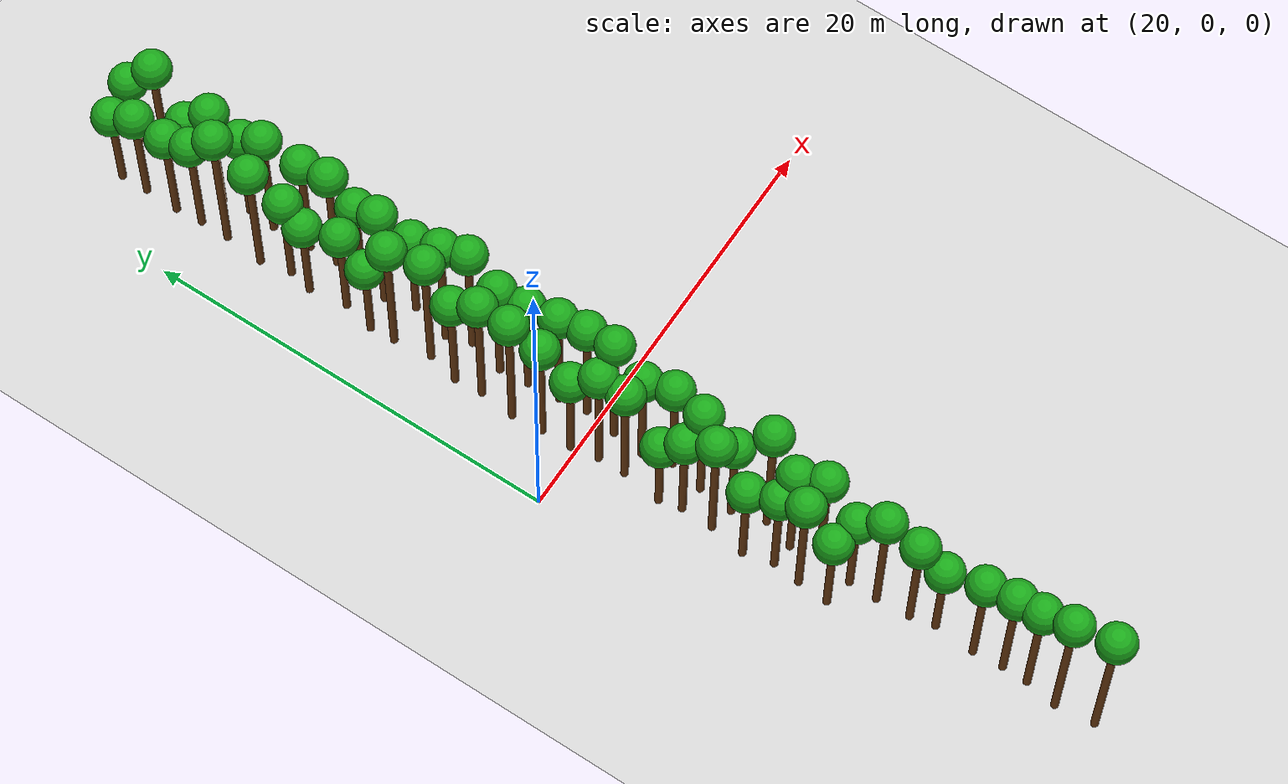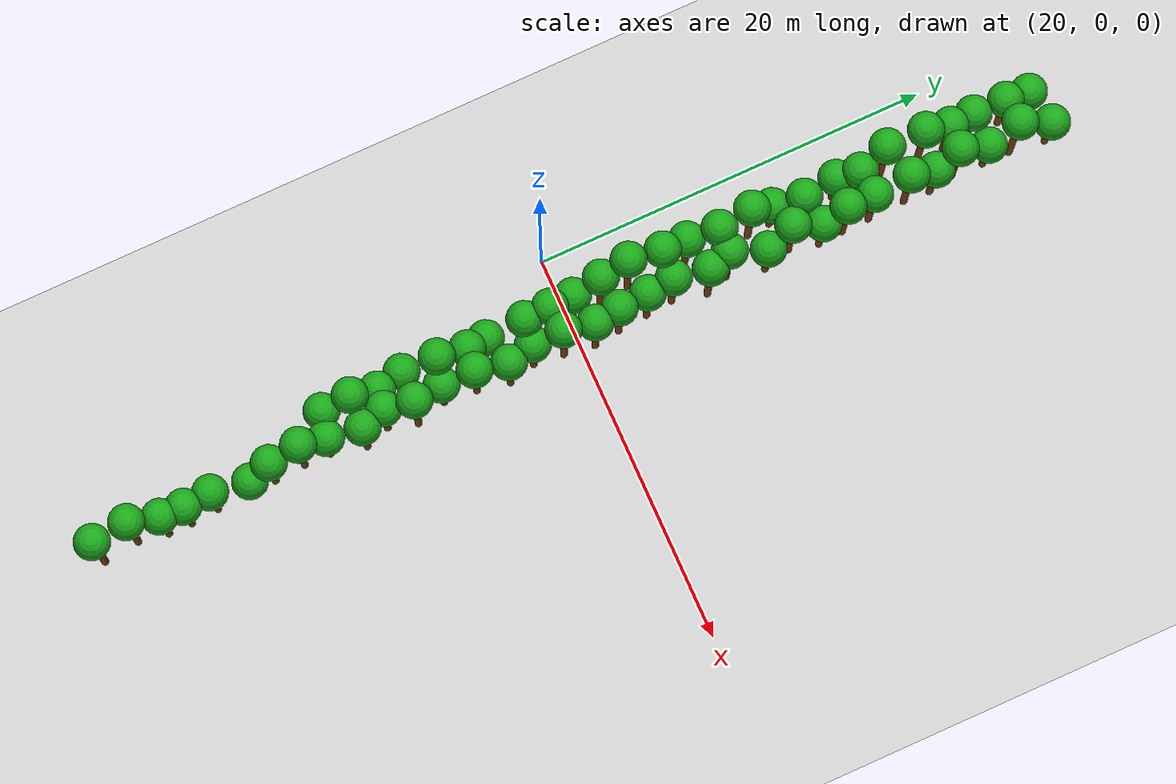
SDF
<sdf version="1.6">
 <world name="forest_world">
  <include><uri>model://sun</uri></include>
  <include><uri>model://ground_plane</uri></include>
  <model name="tree_1083">
   <static>true</static>
   <link name="trunk">
    <collision name="collision">
     <pose>23.01 -12.81 2.91 0 0 0</pose>
     <geometry><cylinder><radius>0.18</radius><length>5.82</length></cylinder></geometry>
    </collision>
    <visual name="trunk_visual">
     <pose>23.01 -12.81 2.91 0 0 0</pose>
     <geometry><cylinder><radius>0.18</radius><length>5.82</length></cylinder></geometry>
     <material><ambient>0.35 0.20 0.05 1</ambient><diffuse>0.45 0.25 0.08 1</diffuse></material>
    </visual>
    <visual name="leaf_visual">
     <pose>23.01 -12.81 6.27 0 0 0</pose>
     <geometry><sphere><radius>0.9</radius></sphere></geometry>
     <material><ambient>0.05 0.45 0.05 1</ambient><diffuse>0.10 0.65 0.10 1</diffuse></material>
    </visual>
   </link>
  </model>
  <model name="tree_1084">
   <static>true</static>
   <link name="trunk">
    <collision name="collision">
     <pose>23.10 -11.32 3.79 0 0 0</pose>
     <geometry><cylinder><radius>0.18</radius><length>7.59</length></cylinder></geometry>
    </collision>
    <visual name="trunk_visual">
     <pose>23.10 -11.32 3.79 0 0 0</pose>
     <geometry><cylinder><radius>0.18</radius><length>7.59</length></cylinder></geometry>
     <material><ambient>0.35 0.20 0.05 1</ambient><diffuse>0.45 0.25 0.08 1</diffuse></material>
    </visual>
    <visual name="leaf_visual">
     <pose>23.10 -11.32 8.04 0 0 0</pose>
     <geometry><sphere><radius>0.9</radius></sphere></geometry>
     <material><ambient>0.05 0.45 0.05 1</ambient><diffuse>0.10 0.65 0.10 1</diffuse></material>
    </visual>
   </link>
  </model>
  <model name="tree_1085">
   <static>true</static>
   <link name="trunk">
    <collision name="collision">
     <pose>23.24 -9.99 3.20 0 0 0</pose>
     <geometry><cylinder><radius>0.18</radius><length>6.40</length></cylinder></geometry>
    </collision>
    <visual name="trunk_visual">
     <pose>23.24 -9.99 3.20 0 0 0</pose>
     <geometry><cylinder><radius>0.18</radius><length>6.40</length></cylinder></geometry>
     <material><ambient>0.35 0.20 0.05 1</ambient><diffuse>0.45 0.25 0.08 1</diffuse></material>
    </visual>
    <visual name="leaf_visual">
     <pose>23.24 -9.99 6.85 0 0 0</pose>
     <geometry><sphere><radius>0.9</radius></sphere></geometry>
     <material><ambient>0.05 0.45 0.05 1</ambient><diffuse>0.10 0.65 0.10 1</diffuse></material>
    </visual>
   </link>
  </model>
  <model name="tree_1086">
   <static>true</static>
   <link name="trunk">
    <collision name="collision">
     <pose>22.89 -8.59 3.01 0 0 0</pose>
     <geometry><cylinder><radius>0.18</radius><length>6.03</length></cylinder></geometry>
    </collision>
    <visual name="trunk_visual">
     <pose>22.89 -8.59 3.01 0 0 0</pose>
     <geometry><cylinder><radius>0.18</radius><length>6.03</length></cylinder></geometry>
     <material><ambient>0.35 0.20 0.05 1</ambient><diffuse>0.45 0.25 0.08 1</diffuse></material>
    </visual>
    <visual name="leaf_visual">
     <pose>22.89 -8.59 6.48 0 0 0</pose>
     <geometry><sphere><radius>0.9</radius></sphere></geometry>
     <material><ambient>0.05 0.45 0.05 1</ambient><diffuse>0.10 0.65 0.10 1</diffuse></material>
    </visual>
   </link>
  </model>
  <model name="tree_1087">
   <static>true</static>
   <link name="trunk">
    <collision name="collision">
     <pose>23.17 -6.84 4.02 0 0 0</pose>
     <geometry><cylinder><radius>0.18</radius><length>8.04</length></cylinder></geometry>
    </collision>
    <visual name="trunk_visual">
     <pose>23.17 -6.84 4.02 0 0 0</pose>
     <geometry><cylinder><radius>0.18</radius><length>8.04</length></cylinder></geometry>
     <material><ambient>0.35 0.20 0.05 1</ambient><diffuse>0.45 0.25 0.08 1</diffuse></material>
    </visual>
    <visual name="leaf_visual">
     <pose>23.17 -6.84 8.49 0 0 0</pose>
     <geometry><sphere><radius>0.9</radius></sphere></geometry>
     <material><ambient>0.05 0.45 0.05 1</ambient><diffuse>0.10 0.65 0.10 1</diffuse></material>
    </visual>
   </link>
  </model>
  <model name="tree_1088">
   <static>true</static>
   <link name="trunk">
    <collision name="collision">
     <pose>23.19 -5.30 3.18 0 0 0</pose>
     <geometry><cylinder><radius>0.18</radius><length>6.36</length></cylinder></geometry>
    </collision>
    <visual name="trunk_visual">
     <pose>23.19 -5.30 3.18 0 0 0</pose>
     <geometry><cylinder><radius>0.18</radius><length>6.36</length></cylinder></geometry>
     <material><ambient>0.35 0.20 0.05 1</ambient><diffuse>0.45 0.25 0.08 1</diffuse></material>
    </visual>
    <visual name="leaf_visual">
     <pose>23.19 -5.30 6.81 0 0 0</pose>
     <geometry><sphere><radius>0.9</radius></sphere></geometry>
     <material><ambient>0.05 0.45 0.05 1</ambient><diffuse>0.10 0.65 0.10 1</diffuse></material>
    </visual>
   </link>
  </model>
  <model name="tree_1089">
   <static>true</static>
   <link name="trunk">
    <collision name="collision">
     <pose>22.95 -4.24 2.55 0 0 0</pose>
     <geometry><cylinder><radius>0.18</radius><length>5.11</length></cylinder></geometry>
    </collision>
    <visual name="trunk_visual">
     <pose>22.95 -4.24 2.55 0 0 0</pose>
     <geometry><cylinder><radius>0.18</radius><length>5.11</length></cylinder></geometry>
     <material><ambient>0.35 0.20 0.05 1</ambient><diffuse>0.45 0.25 0.08 1</diffuse></material>
    </visual>
    <visual name="leaf_visual">
     <pose>22.95 -4.24 5.56 0 0 0</pose>
     <geometry><sphere><radius>0.9</radius></sphere></geometry>
     <material><ambient>0.05 0.45 0.05 1</ambient><diffuse>0.10 0.65 0.10 1</diffuse></material>
    </visual>
   </link>
  </model>
  <model name="tree_1090">
   <static>true</static>
   <link name="trunk">
    <collision name="collision">
     <pose>23.19 -2.31 3.79 0 0 0</pose>
     <geometry><cylinder><radius>0.18</radius><length>7.58</length></cylinder></geometry>
    </collision>
    <visual name="trunk_visual">
     <pose>23.19 -2.31 3.79 0 0 0</pose>
     <geometry><cylinder><radius>0.18</radius><length>7.58</length></cylinder></geometry>
     <material><ambient>0.35 0.20 0.05 1</ambient><diffuse>0.45 0.25 0.08 1</diffuse></material>
    </visual>
    <visual name="leaf_visual">
     <pose>23.19 -2.31 8.03 0 0 0</pose>
     <geometry><sphere><radius>0.9</radius></sphere></geometry>
     <material><ambient>0.05 0.45 0.05 1</ambient><diffuse>0.10 0.65 0.10 1</diffuse></material>
    </visual>
   </link>
  </model>
  <model name="tree_1091">
   <static>true</static>
   <link name="trunk">
    <collision name="collision">
     <pose>23.17 -0.98 3.87 0 0 0</pose>
     <geometry><cylinder><radius>0.18</radius><length>7.74</length></cylinder></geometry>
    </collision>
    <visual name="trunk_visual">
     <pose>23.17 -0.98 3.87 0 0 0</pose>
     <geometry><cylinder><radius>0.18</radius><length>7.74</length></cylinder></geometry>
     <material><ambient>0.35 0.20 0.05 1</ambient><diffuse>0.45 0.25 0.08 1</diffuse></material>
    </visual>
    <visual name="leaf_visual">
     <pose>23.17 -0.98 8.19 0 0 0</pose>
     <geometry><sphere><radius>0.9</radius></sphere></geometry>
     <material><ambient>0.05 0.45 0.05 1</ambient><diffuse>0.10 0.65 0.10 1</diffuse></material>
    </visual>
   </link>
  </model>
  <model name="tree_1092">
   <static>true</static>
   <link name="trunk">
    <collision name="collision">
     <pose>22.94 0.32 3.09 0 0 0</pose>
     <geometry><cylinder><radius>0.18</radius><length>6.18</length></cylinder></geometry>
    </collision>
    <visual name="trunk_visual">
     <pose>22.94 0.32 3.09 0 0 0</pose>
     <geometry><cylinder><radius>0.18</radius><length>6.18</length></cylinder></geometry>
     <material><ambient>0.35 0.20 0.05 1</ambient><diffuse>0.45 0.25 0.08 1</diffuse></material>
    </visual>
    <visual name="leaf_visual">
     <pose>22.94 0.32 6.63 0 0 0</pose>
     <geometry><sphere><radius>0.9</radius></sphere></geometry>
     <material><ambient>0.05 0.45 0.05 1</ambient><diffuse>0.10 0.65 0.10 1</diffuse></material>
    </visual>
   </link>
  </model>
  <model name="tree_1093">
   <static>true</static>
   <link name="trunk">
    <collision name="collision">
     <pose>22.89 1.79 3.87 0 0 0</pose>
     <geometry><cylinder><radius>0.18</radius><length>7.74</length></cylinder></geometry>
    </collision>
    <visual name="trunk_visual">
     <pose>22.89 1.79 3.87 0 0 0</pose>
     <geometry><cylinder><radius>0.18</radius><length>7.74</length></cylinder></geometry>
     <material><ambient>0.35 0.20 0.05 1</ambient><diffuse>0.45 0.25 0.08 1</diffuse></material>
    </visual>
    <visual name="leaf_visual">
     <pose>22.89 1.79 8.19 0 0 0</pose>
     <geometry><sphere><radius>0.9</radius></sphere></geometry>
     <material><ambient>0.05 0.45 0.05 1</ambient><diffuse>0.10 0.65 0.10 1</diffuse></material>
    </visual>
   </link>
  </model>
  <model name="tree_1094">
   <static>true</static>
   <link name="trunk">
    <collision name="collision">
     <pose>22.77 3.28 4.29 0 0 0</pose>
     <geometry><cylinder><radius>0.18</radius><length>8.58</length></cylinder></geometry>
    </collision>
    <visual name="trunk_visual">
     <pose>22.77 3.28 4.29 0 0 0</pose>
     <geometry><cylinder><radius>0.18</radius><length>8.58</length></cylinder></geometry>
     <material><ambient>0.35 0.20 0.05 1</ambient><diffuse>0.45 0.25 0.08 1</diffuse></material>
    </visual>
    <visual name="leaf_visual">
     <pose>22.77 3.28 9.03 0 0 0</pose>
     <geometry><sphere><radius>0.9</radius></sphere></geometry>
     <material><ambient>0.05 0.45 0.05 1</ambient><diffuse>0.10 0.65 0.10 1</diffuse></material>
    </visual>
   </link>
  </model>
  <model name="tree_1095">
   <static>true</static>
   <link name="trunk">
    <collision name="collision">
     <pose>22.93 4.98 4.07 0 0 0</pose>
     <geometry><cylinder><radius>0.18</radius><length>8.13</length></cylinder></geometry>
    </collision>
    <visual name="trunk_visual">
     <pose>22.93 4.98 4.07 0 0 0</pose>
     <geometry><cylinder><radius>0.18</radius><length>8.13</length></cylinder></geometry>
     <material><ambient>0.35 0.20 0.05 1</ambient><diffuse>0.45 0.25 0.08 1</diffuse></material>
    </visual>
    <visual name="leaf_visual">
     <pose>22.93 4.98 8.58 0 0 0</pose>
     <geometry><sphere><radius>0.9</radius></sphere></geometry>
     <material><ambient>0.05 0.45 0.05 1</ambient><diffuse>0.10 0.65 0.10 1</diffuse></material>
    </visual>
   </link>
  </model>
  <model name="tree_1096">
   <static>true</static>
   <link name="trunk">
    <collision name="collision">
     <pose>22.81 6.32 3.45 0 0 0</pose>
     <geometry><cylinder><radius>0.18</radius><length>6.90</length></cylinder></geometry>
    </collision>
    <visual name="trunk_visual">
     <pose>22.81 6.32 3.45 0 0 0</pose>
     <geometry><cylinder><radius>0.18</radius><length>6.90</length></cylinder></geometry>
     <material><ambient>0.35 0.20 0.05 1</ambient><diffuse>0.45 0.25 0.08 1</diffuse></material>
    </visual>
    <visual name="leaf_visual">
     <pose>22.81 6.32 7.35 0 0 0</pose>
     <geometry><sphere><radius>0.9</radius></sphere></geometry>
     <material><ambient>0.05 0.45 0.05 1</ambient><diffuse>0.10 0.65 0.10 1</diffuse></material>
    </visual>
   </link>
  </model>
  <model name="tree_1097">
   <static>true</static>
   <link name="trunk">
    <collision name="collision">
     <pose>23.15 7.83 4.26 0 0 0</pose>
     <geometry><cylinder><radius>0.18</radius><length>8.52</length></cylinder></geometry>
    </collision>
    <visual name="trunk_visual">
     <pose>23.15 7.83 4.26 0 0 0</pose>
     <geometry><cylinder><radius>0.18</radius><length>8.52</length></cylinder></geometry>
     <material><ambient>0.35 0.20 0.05 1</ambient><diffuse>0.45 0.25 0.08 1</diffuse></material>
    </visual>
    <visual name="leaf_visual">
     <pose>23.15 7.83 8.97 0 0 0</pose>
     <geometry><sphere><radius>0.9</radius></sphere></geometry>
     <material><ambient>0.05 0.45 0.05 1</ambient><diffuse>0.10 0.65 0.10 1</diffuse></material>
    </visual>
   </link>
  </model>
  <model name="tree_1098">
   <static>true</static>
   <link name="trunk">
    <collision name="collision">
     <pose>22.91 9.63 4.12 0 0 0</pose>
     <geometry><cylinder><radius>0.18</radius><length>8.24</length></cylinder></geometry>
    </collision>
    <visual name="trunk_visual">
     <pose>22.91 9.63 4.12 0 0 0</pose>
     <geometry><cylinder><radius>0.18</radius><length>8.24</length></cylinder></geometry>
     <material><ambient>0.35 0.20 0.05 1</ambient><diffuse>0.45 0.25 0.08 1</diffuse></material>
    </visual>
    <visual name="leaf_visual">
     <pose>22.91 9.63 8.69 0 0 0</pose>
     <geometry><sphere><radius>0.9</radius></sphere></geometry>
     <material><ambient>0.05 0.45 0.05 1</ambient><diffuse>0.10 0.65 0.10 1</diffuse></material>
    </visual>
   </link>
  </model>
  <model name="tree_1099">
   <static>true</static>
   <link name="trunk">
    <collision name="collision">
     <pose>22.81 10.82 2.67 0 0 0</pose>
     <geometry><cylinder><radius>0.18</radius><length>5.33</length></cylinder></geometry>
    </collision>
    <visual name="trunk_visual">
     <pose>22.81 10.82 2.67 0 0 0</pose>
     <geometry><cylinder><radius>0.18</radius><length>5.33</length></cylinder></geometry>
     <material><ambient>0.35 0.20 0.05 1</ambient><diffuse>0.45 0.25 0.08 1</diffuse></material>
    </visual>
    <visual name="leaf_visual">
     <pose>22.81 10.82 5.78 0 0 0</pose>
     <geometry><sphere><radius>0.9</radius></sphere></geometry>
     <material><ambient>0.05 0.45 0.05 1</ambient><diffuse>0.10 0.65 0.10 1</diffuse></material>
    </visual>
   </link>
  </model>
  <model name="tree_1100">
   <static>true</static>
   <link name="trunk">
    <collision name="collision">
     <pose>23.14 12.33 3.08 0 0 0</pose>
     <geometry><cylinder><radius>0.18</radius><length>6.16</length></cylinder></geometry>
    </collision>
    <visual name="trunk_visual">
     <pose>23.14 12.33 3.08 0 0 0</pose>
     <geometry><cylinder><radius>0.18</radius><length>6.16</length></cylinder></geometry>
     <material><ambient>0.35 0.20 0.05 1</ambient><diffuse>0.45 0.25 0.08 1</diffuse></material>
    </visual>
    <visual name="leaf_visual">
     <pose>23.14 12.33 6.61 0 0 0</pose>
     <geometry><sphere><radius>0.9</radius></sphere></geometry>
     <material><ambient>0.05 0.45 0.05 1</ambient><diffuse>0.10 0.65 0.10 1</diffuse></material>
    </visual>
   </link>
  </model>
  <model name="tree_1101">
   <static>true</static>
   <link name="trunk">
    <collision name="collision">
     <pose>22.86 14.14 2.77 0 0 0</pose>
     <geometry><cylinder><radius>0.18</radius><length>5.55</length></cylinder></geometry>
    </collision>
    <visual name="trunk_visual">
     <pose>22.86 14.14 2.77 0 0 0</pose>
     <geometry><cylinder><radius>0.18</radius><length>5.55</length></cylinder></geometry>
     <material><ambient>0.35 0.20 0.05 1</ambient><diffuse>0.45 0.25 0.08 1</diffuse></material>
    </visual>
    <visual name="leaf_visual">
     <pose>22.86 14.14 6.00 0 0 0</pose>
     <geometry><sphere><radius>0.9</radius></sphere></geometry>
     <material><ambient>0.05 0.45 0.05 1</ambient><diffuse>0.10 0.65 0.10 1</diffuse></material>
    </visual>
   </link>
  </model>
  <model name="tree_1102">
   <static>true</static>
   <link name="trunk">
    <collision name="collision">
     <pose>23.10 15.28 3.07 0 0 0</pose>
     <geometry><cylinder><radius>0.18</radius><length>6.15</length></cylinder></geometry>
    </collision>
    <visual name="trunk_visual">
     <pose>23.10 15.28 3.07 0 0 0</pose>
     <geometry><cylinder><radius>0.18</radius><length>6.15</length></cylinder></geometry>
     <material><ambient>0.35 0.20 0.05 1</ambient><diffuse>0.45 0.25 0.08 1</diffuse></material>
    </visual>
    <visual name="leaf_visual">
     <pose>23.10 15.28 6.60 0 0 0</pose>
     <geometry><sphere><radius>0.9</radius></sphere></geometry>
     <material><ambient>0.05 0.45 0.05 1</ambient><diffuse>0.10 0.65 0.10 1</diffuse></material>
    </visual>
   </link>
  </model>
  <model name="tree_1103">
   <static>true</static>
   <link name="trunk">
    <collision name="collision">
     <pose>22.79 16.75 3.91 0 0 0</pose>
     <geometry><cylinder><radius>0.18</radius><length>7.82</length></cylinder></geometry>
    </collision>
    <visual name="trunk_visual">
     <pose>22.79 16.75 3.91 0 0 0</pose>
     <geometry><cylinder><radius>0.18</radius><length>7.82</length></cylinder></geometry>
     <material><ambient>0.35 0.20 0.05 1</ambient><diffuse>0.45 0.25 0.08 1</diffuse></material>
    </visual>
    <visual name="leaf_visual">
     <pose>22.79 16.75 8.27 0 0 0</pose>
     <geometry><sphere><radius>0.9</radius></sphere></geometry>
     <material><ambient>0.05 0.45 0.05 1</ambient><diffuse>0.10 0.65 0.10 1</diffuse></material>
    </visual>
   </link>
  </model>
  <model name="tree_1104">
   <static>true</static>
   <link name="trunk">
    <collision name="collision">
     <pose>22.94 18.65 4.35 0 0 0</pose>
     <geometry><cylinder><radius>0.18</radius><length>8.70</length></cylinder></geometry>
    </collision>
    <visual name="trunk_visual">
     <pose>22.94 18.65 4.35 0 0 0</pose>
     <geometry><cylinder><radius>0.18</radius><length>8.70</length></cylinder></geometry>
     <material><ambient>0.35 0.20 0.05 1</ambient><diffuse>0.45 0.25 0.08 1</diffuse></material>
    </visual>
    <visual name="leaf_visual">
     <pose>22.94 18.65 9.15 0 0 0</pose>
     <geometry><sphere><radius>0.9</radius></sphere></geometry>
     <material><ambient>0.05 0.45 0.05 1</ambient><diffuse>0.10 0.65 0.10 1</diffuse></material>
    </visual>
   </link>
  </model>
  <model name="tree_1105">
   <static>true</static>
   <link name="trunk">
    <collision name="collision">
     <pose>22.93 20.05 3.32 0 0 0</pose>
     <geometry><cylinder><radius>0.18</radius><length>6.64</length></cylinder></geometry>
    </collision>
    <visual name="trunk_visual">
     <pose>22.93 20.05 3.32 0 0 0</pose>
     <geometry><cylinder><radius>0.18</radius><length>6.64</length></cylinder></geometry>
     <material><ambient>0.35 0.20 0.05 1</ambient><diffuse>0.45 0.25 0.08 1</diffuse></material>
    </visual>
    <visual name="leaf_visual">
     <pose>22.93 20.05 7.09 0 0 0</pose>
     <geometry><sphere><radius>0.9</radius></sphere></geometry>
     <material><ambient>0.05 0.45 0.05 1</ambient><diffuse>0.10 0.65 0.10 1</diffuse></material>
    </visual>
   </link>
  </model>
  <model name="tree_1106">
   <static>true</static>
   <link name="trunk">
    <collision name="collision">
     <pose>22.82 21.35 3.10 0 0 0</pose>
     <geometry><cylinder><radius>0.18</radius><length>6.19</length></cylinder></geometry>
    </collision>
    <visual name="trunk_visual">
     <pose>22.82 21.35 3.10 0 0 0</pose>
     <geometry><cylinder><radius>0.18</radius><length>6.19</length></cylinder></geometry>
     <material><ambient>0.35 0.20 0.05 1</ambient><diffuse>0.45 0.25 0.08 1</diffuse></material>
    </visual>
    <visual name="leaf_visual">
     <pose>22.82 21.35 6.64 0 0 0</pose>
     <geometry><sphere><radius>0.9</radius></sphere></geometry>
     <material><ambient>0.05 0.45 0.05 1</ambient><diffuse>0.10 0.65 0.10 1</diffuse></material>
    </visual>
   </link>
  </model>
  <model name="tree_1107">
   <static>true</static>
   <link name="trunk">
    <collision name="collision">
     <pose>22.86 23.01 3.11 0 0 0</pose>
     <geometry><cylinder><radius>0.18</radius><length>6.21</length></cylinder></geometry>
    </collision>
    <visual name="trunk_visual">
     <pose>22.86 23.01 3.11 0 0 0</pose>
     <geometry><cylinder><radius>0.18</radius><length>6.21</length></cylinder></geometry>
     <material><ambient>0.35 0.20 0.05 1</ambient><diffuse>0.45 0.25 0.08 1</diffuse></material>
    </visual>
    <visual name="leaf_visual">
     <pose>22.86 23.01 6.66 0 0 0</pose>
     <geometry><sphere><radius>0.9</radius></sphere></geometry>
     <material><ambient>0.05 0.45 0.05 1</ambient><diffuse>0.10 0.65 0.10 1</diffuse></material>
    </visual>
   </link>
  </model>
  <model name="tree_1108">
   <static>true</static>
   <link name="trunk">
    <collision name="collision">
     <pose>22.82 24.33 2.56 0 0 0</pose>
     <geometry><cylinder><radius>0.18</radius><length>5.13</length></cylinder></geometry>
    </collision>
    <visual name="trunk_visual">
     <pose>22.82 24.33 2.56 0 0 0</pose>
     <geometry><cylinder><radius>0.18</radius><length>5.13</length></cylinder></geometry>
     <material><ambient>0.35 0.20 0.05 1</ambient><diffuse>0.45 0.25 0.08 1</diffuse></material>
    </visual>
    <visual name="leaf_visual">
     <pose>22.82 24.33 5.58 0 0 0</pose>
     <geometry><sphere><radius>0.9</radius></sphere></geometry>
     <material><ambient>0.05 0.45 0.05 1</ambient><diffuse>0.10 0.65 0.10 1</diffuse></material>
    </visual>
   </link>
  </model>
  <model name="tree_1109">
   <static>true</static>
   <link name="trunk">
    <collision name="collision">
     <pose>24.60 -25.20 4.35 0 0 0</pose>
     <geometry><cylinder><radius>0.18</radius><length>8.71</length></cylinder></geometry>
    </collision>
    <visual name="trunk_visual">
     <pose>24.60 -25.20 4.35 0 0 0</pose>
     <geometry><cylinder><radius>0.18</radius><length>8.71</length></cylinder></geometry>
     <material><ambient>0.35 0.20 0.05 1</ambient><diffuse>0.45 0.25 0.08 1</diffuse></material>
    </visual>
    <visual name="leaf_visual">
     <pose>24.60 -25.20 9.16 0 0 0</pose>
     <geometry><sphere><radius>0.9</radius></sphere></geometry>
     <material><ambient>0.05 0.45 0.05 1</ambient><diffuse>0.10 0.65 0.10 1</diffuse></material>
    </visual>
   </link>
  </model>
  <model name="tree_1110">
   <static>true</static>
   <link name="trunk">
    <collision name="collision">
     <pose>24.38 -23.36 4.25 0 0 0</pose>
     <geometry><cylinder><radius>0.18</radius><length>8.49</length></cylinder></geometry>
    </collision>
    <visual name="trunk_visual">
     <pose>24.38 -23.36 4.25 0 0 0</pose>
     <geometry><cylinder><radius>0.18</radius><length>8.49</length></cylinder></geometry>
     <material><ambient>0.35 0.20 0.05 1</ambient><diffuse>0.45 0.25 0.08 1</diffuse></material>
    </visual>
    <visual name="leaf_visual">
     <pose>24.38 -23.36 8.94 0 0 0</pose>
     <geometry><sphere><radius>0.9</radius></sphere></geometry>
     <material><ambient>0.05 0.45 0.05 1</ambient><diffuse>0.10 0.65 0.10 1</diffuse></material>
    </visual>
   </link>
  </model>
  <model name="tree_1111">
   <static>true</static>
   <link name="trunk">
    <collision name="collision">
     <pose>24.63 -21.84 3.60 0 0 0</pose>
     <geometry><cylinder><radius>0.18</radius><length>7.20</length></cylinder></geometry>
    </collision>
    <visual name="trunk_visual">
     <pose>24.63 -21.84 3.60 0 0 0</pose>
     <geometry><cylinder><radius>0.18</radius><length>7.20</length></cylinder></geometry>
     <material><ambient>0.35 0.20 0.05 1</ambient><diffuse>0.45 0.25 0.08 1</diffuse></material>
    </visual>
    <visual name="leaf_visual">
     <pose>24.63 -21.84 7.65 0 0 0</pose>
     <geometry><sphere><radius>0.9</radius></sphere></geometry>
     <material><ambient>0.05 0.45 0.05 1</ambient><diffuse>0.10 0.65 0.10 1</diffuse></material>
    </visual>
   </link>
  </model>
  <model name="tree_1112">
   <static>true</static>
   <link name="trunk">
    <collision name="collision">
     <pose>24.64 -20.63 3.52 0 0 0</pose>
     <geometry><cylinder><radius>0.18</radius><length>7.05</length></cylinder></geometry>
    </collision>
    <visual name="trunk_visual">
     <pose>24.64 -20.63 3.52 0 0 0</pose>
     <geometry><cylinder><radius>0.18</radius><length>7.05</length></cylinder></geometry>
     <material><ambient>0.35 0.20 0.05 1</ambient><diffuse>0.45 0.25 0.08 1</diffuse></material>
    </visual>
    <visual name="leaf_visual">
     <pose>24.64 -20.63 7.50 0 0 0</pose>
     <geometry><sphere><radius>0.9</radius></sphere></geometry>
     <material><ambient>0.05 0.45 0.05 1</ambient><diffuse>0.10 0.65 0.10 1</diffuse></material>
    </visual>
   </link>
  </model>
  <model name="tree_1113">
   <static>true</static>
   <link name="trunk">
    <collision name="collision">
     <pose>24.52 -19.21 3.43 0 0 0</pose>
     <geometry><cylinder><radius>0.18</radius><length>6.86</length></cylinder></geometry>
    </collision>
    <visual name="trunk_visual">
     <pose>24.52 -19.21 3.43 0 0 0</pose>
     <geometry><cylinder><radius>0.18</radius><length>6.86</length></cylinder></geometry>
     <material><ambient>0.35 0.20 0.05 1</ambient><diffuse>0.45 0.25 0.08 1</diffuse></material>
    </visual>
    <visual name="leaf_visual">
     <pose>24.52 -19.21 7.31 0 0 0</pose>
     <geometry><sphere><radius>0.9</radius></sphere></geometry>
     <material><ambient>0.05 0.45 0.05 1</ambient><diffuse>0.10 0.65 0.10 1</diffuse></material>
    </visual>
   </link>
  </model>
  <model name="tree_1114">
   <static>true</static>
   <link name="trunk">
    <collision name="collision">
     <pose>24.64 -17.27 2.72 0 0 0</pose>
     <geometry><cylinder><radius>0.18</radius><length>5.44</length></cylinder></geometry>
    </collision>
    <visual name="trunk_visual">
     <pose>24.64 -17.27 2.72 0 0 0</pose>
     <geometry><cylinder><radius>0.18</radius><length>5.44</length></cylinder></geometry>
     <material><ambient>0.35 0.20 0.05 1</ambient><diffuse>0.45 0.25 0.08 1</diffuse></material>
    </visual>
    <visual name="leaf_visual">
     <pose>24.64 -17.27 5.89 0 0 0</pose>
     <geometry><sphere><radius>0.9</radius></sphere></geometry>
     <material><ambient>0.05 0.45 0.05 1</ambient><diffuse>0.10 0.65 0.10 1</diffuse></material>
    </visual>
   </link>
  </model>
  <model name="tree_1115">
   <static>true</static>
   <link name="trunk">
    <collision name="collision">
     <pose>24.40 -16.11 3.50 0 0 0</pose>
     <geometry><cylinder><radius>0.18</radius><length>7.00</length></cylinder></geometry>
    </collision>
    <visual name="trunk_visual">
     <pose>24.40 -16.11 3.50 0 0 0</pose>
     <geometry><cylinder><radius>0.18</radius><length>7.00</length></cylinder></geometry>
     <material><ambient>0.35 0.20 0.05 1</ambient><diffuse>0.45 0.25 0.08 1</diffuse></material>
    </visual>
    <visual name="leaf_visual">
     <pose>24.40 -16.11 7.45 0 0 0</pose>
     <geometry><sphere><radius>0.9</radius></sphere></geometry>
     <material><ambient>0.05 0.45 0.05 1</ambient><diffuse>0.10 0.65 0.10 1</diffuse></material>
    </visual>
   </link>
  </model>
  <model name="tree_1116">
   <static>true</static>
   <link name="trunk">
    <collision name="collision">
     <pose>24.28 -14.51 3.90 0 0 0</pose>
     <geometry><cylinder><radius>0.18</radius><length>7.80</length></cylinder></geometry>
    </collision>
    <visual name="trunk_visual">
     <pose>24.28 -14.51 3.90 0 0 0</pose>
     <geometry><cylinder><radius>0.18</radius><length>7.80</length></cylinder></geometry>
     <material><ambient>0.35 0.20 0.05 1</ambient><diffuse>0.45 0.25 0.08 1</diffuse></material>
    </visual>
    <visual name="leaf_visual">
     <pose>24.28 -14.51 8.25 0 0 0</pose>
     <geometry><sphere><radius>0.9</radius></sphere></geometry>
     <material><ambient>0.05 0.45 0.05 1</ambient><diffuse>0.10 0.65 0.10 1</diffuse></material>
    </visual>
   </link>
  </model>
  <model name="tree_1117">
   <static>true</static>
   <link name="trunk">
    <collision name="collision">
     <pose>24.30 -13.14 2.96 0 0 0</pose>
     <geometry><cylinder><radius>0.18</radius><length>5.93</length></cylinder></geometry>
    </collision>
    <visual name="trunk_visual">
     <pose>24.30 -13.14 2.96 0 0 0</pose>
     <geometry><cylinder><radius>0.18</radius><length>5.93</length></cylinder></geometry>
     <material><ambient>0.35 0.20 0.05 1</ambient><diffuse>0.45 0.25 0.08 1</diffuse></material>
    </visual>
    <visual name="leaf_visual">
     <pose>24.30 -13.14 6.38 0 0 0</pose>
     <geometry><sphere><radius>0.9</radius></sphere></geometry>
     <material><ambient>0.05 0.45 0.05 1</ambient><diffuse>0.10 0.65 0.10 1</diffuse></material>
    </visual>
   </link>
  </model>
  <model name="tree_1118">
   <static>true</static>
   <link name="trunk">
    <collision name="collision">
     <pose>24.71 -11.38 3.61 0 0 0</pose>
     <geometry><cylinder><radius>0.18</radius><length>7.21</length></cylinder></geometry>
    </collision>
    <visual name="trunk_visual">
     <pose>24.71 -11.38 3.61 0 0 0</pose>
     <geometry><cylinder><radius>0.18</radius><length>7.21</length></cylinder></geometry>
     <material><ambient>0.35 0.20 0.05 1</ambient><diffuse>0.45 0.25 0.08 1</diffuse></material>
    </visual>
    <visual name="leaf_visual">
     <pose>24.71 -11.38 7.66 0 0 0</pose>
     <geometry><sphere><radius>0.9</radius></sphere></geometry>
     <material><ambient>0.05 0.45 0.05 1</ambient><diffuse>0.10 0.65 0.10 1</diffuse></material>
    </visual>
   </link>
  </model>
  <model name="tree_1119">
   <static>true</static>
   <link name="trunk">
    <collision name="collision">
     <pose>24.28 -10.12 3.52 0 0 0</pose>
     <geometry><cylinder><radius>0.18</radius><length>7.05</length></cylinder></geometry>
    </collision>
    <visual name="trunk_visual">
     <pose>24.28 -10.12 3.52 0 0 0</pose>
     <geometry><cylinder><radius>0.18</radius><length>7.05</length></cylinder></geometry>
     <material><ambient>0.35 0.20 0.05 1</ambient><diffuse>0.45 0.25 0.08 1</diffuse></material>
    </visual>
    <visual name="leaf_visual">
     <pose>24.28 -10.12 7.50 0 0 0</pose>
     <geometry><sphere><radius>0.9</radius></sphere></geometry>
     <material><ambient>0.05 0.45 0.05 1</ambient><diffuse>0.10 0.65 0.10 1</diffuse></material>
    </visual>
   </link>
  </model>
  <model name="tree_1120">
   <static>true</static>
   <link name="trunk">
    <collision name="collision">
     <pose>24.70 -8.67 4.26 0 0 0</pose>
     <geometry><cylinder><radius>0.18</radius><length>8.52</length></cylinder></geometry>
    </collision>
    <visual name="trunk_visual">
     <pose>24.70 -8.67 4.26 0 0 0</pose>
     <geometry><cylinder><radius>0.18</radius><length>8.52</length></cylinder></geometry>
     <material><ambient>0.35 0.20 0.05 1</ambient><diffuse>0.45 0.25 0.08 1</diffuse></material>
    </visual>
    <visual name="leaf_visual">
     <pose>24.70 -8.67 8.97 0 0 0</pose>
     <geometry><sphere><radius>0.9</radius></sphere></geometry>
     <material><ambient>0.05 0.45 0.05 1</ambient><diffuse>0.10 0.65 0.10 1</diffuse></material>
    </visual>
   </link>
  </model>
  <model name="tree_1121">
   <static>true</static>
   <link name="trunk">
    <collision name="collision">
     <pose>24.27 -7.12 3.08 0 0 0</pose>
     <geometry><cylinder><radius>0.18</radius><length>6.16</length></cylinder></geometry>
    </collision>
    <visual name="trunk_visual">
     <pose>24.27 -7.12 3.08 0 0 0</pose>
     <geometry><cylinder><radius>0.18</radius><length>6.16</length></cylinder></geometry>
     <material><ambient>0.35 0.20 0.05 1</ambient><diffuse>0.45 0.25 0.08 1</diffuse></material>
    </visual>
    <visual name="leaf_visual">
     <pose>24.27 -7.12 6.61 0 0 0</pose>
     <geometry><sphere><radius>0.9</radius></sphere></geometry>
     <material><ambient>0.05 0.45 0.05 1</ambient><diffuse>0.10 0.65 0.10 1</diffuse></material>
    </visual>
   </link>
  </model>
  <model name="tree_1122">
   <static>true</static>
   <link name="trunk">
    <collision name="collision">
     <pose>24.40 -5.44 3.61 0 0 0</pose>
     <geometry><cylinder><radius>0.18</radius><length>7.22</length></cylinder></geometry>
    </collision>
    <visual name="trunk_visual">
     <pose>24.40 -5.44 3.61 0 0 0</pose>
     <geometry><cylinder><radius>0.18</radius><length>7.22</length></cylinder></geometry>
     <material><ambient>0.35 0.20 0.05 1</ambient><diffuse>0.45 0.25 0.08 1</diffuse></material>
    </visual>
    <visual name="leaf_visual">
     <pose>24.40 -5.44 7.67 0 0 0</pose>
     <geometry><sphere><radius>0.9</radius></sphere></geometry>
     <material><ambient>0.05 0.45 0.05 1</ambient><diffuse>0.10 0.65 0.10 1</diffuse></material>
    </visual>
   </link>
  </model>
  <model name="tree_1123">
   <static>true</static>
   <link name="trunk">
    <collision name="collision">
     <pose>24.72 -3.80 3.54 0 0 0</pose>
     <geometry><cylinder><radius>0.18</radius><length>7.08</length></cylinder></geometry>
    </collision>
    <visual name="trunk_visual">
     <pose>24.72 -3.80 3.54 0 0 0</pose>
     <geometry><cylinder><radius>0.18</radius><length>7.08</length></cylinder></geometry>
     <material><ambient>0.35 0.20 0.05 1</ambient><diffuse>0.45 0.25 0.08 1</diffuse></material>
    </visual>
    <visual name="leaf_visual">
     <pose>24.72 -3.80 7.53 0 0 0</pose>
     <geometry><sphere><radius>0.9</radius></sphere></geometry>
     <material><ambient>0.05 0.45 0.05 1</ambient><diffuse>0.10 0.65 0.10 1</diffuse></material>
    </visual>
   </link>
  </model>
  <model name="tree_1124">
   <static>true</static>
   <link name="trunk">
    <collision name="collision">
     <pose>24.38 -2.41 3.45 0 0 0</pose>
     <geometry><cylinder><radius>0.18</radius><length>6.91</length></cylinder></geometry>
    </collision>
    <visual name="trunk_visual">
     <pose>24.38 -2.41 3.45 0 0 0</pose>
     <geometry><cylinder><radius>0.18</radius><length>6.91</length></cylinder></geometry>
     <material><ambient>0.35 0.20 0.05 1</ambient><diffuse>0.45 0.25 0.08 1</diffuse></material>
    </visual>
    <visual name="leaf_visual">
     <pose>24.38 -2.41 7.36 0 0 0</pose>
     <geometry><sphere><radius>0.9</radius></sphere></geometry>
     <material><ambient>0.05 0.45 0.05 1</ambient><diffuse>0.10 0.65 0.10 1</diffuse></material>
    </visual>
   </link>
  </model>
  <model name="tree_1125">
   <static>true</static>
   <link name="trunk">
    <collision name="collision">
     <pose>24.53 -0.88 4.20 0 0 0</pose>
     <geometry><cylinder><radius>0.18</radius><length>8.39</length></cylinder></geometry>
    </collision>
    <visual name="trunk_visual">
     <pose>24.53 -0.88 4.20 0 0 0</pose>
     <geometry><cylinder><radius>0.18</radius><length>8.39</length></cylinder></geometry>
     <material><ambient>0.35 0.20 0.05 1</ambient><diffuse>0.45 0.25 0.08 1</diffuse></material>
    </visual>
    <visual name="leaf_visual">
     <pose>24.53 -0.88 8.84 0 0 0</pose>
     <geometry><sphere><radius>0.9</radius></sphere></geometry>
     <material><ambient>0.05 0.45 0.05 1</ambient><diffuse>0.10 0.65 0.10 1</diffuse></material>
    </visual>
   </link>
  </model>
  <model name="tree_1126">
   <static>true</static>
   <link name="trunk">
    <collision name="collision">
     <pose>24.75 0.68 3.83 0 0 0</pose>
     <geometry><cylinder><radius>0.18</radius><length>7.66</length></cylinder></geometry>
    </collision>
    <visual name="trunk_visual">
     <pose>24.75 0.68 3.83 0 0 0</pose>
     <geometry><cylinder><radius>0.18</radius><length>7.66</length></cylinder></geometry>
     <material><ambient>0.35 0.20 0.05 1</ambient><diffuse>0.45 0.25 0.08 1</diffuse></material>
    </visual>
    <visual name="leaf_visual">
     <pose>24.75 0.68 8.11 0 0 0</pose>
     <geometry><sphere><radius>0.9</radius></sphere></geometry>
     <material><ambient>0.05 0.45 0.05 1</ambient><diffuse>0.10 0.65 0.10 1</diffuse></material>
    </visual>
   </link>
  </model>
  <model name="tree_1127">
   <static>true</static>
   <link name="trunk">
    <collision name="collision">
     <pose>24.57 2.01 3.81 0 0 0</pose>
     <geometry><cylinder><radius>0.18</radius><length>7.61</length></cylinder></geometry>
    </collision>
    <visual name="trunk_visual">
     <pose>24.57 2.01 3.81 0 0 0</pose>
     <geometry><cylinder><radius>0.18</radius><length>7.61</length></cylinder></geometry>
     <material><ambient>0.35 0.20 0.05 1</ambient><diffuse>0.45 0.25 0.08 1</diffuse></material>
    </visual>
    <visual name="leaf_visual">
     <pose>24.57 2.01 8.06 0 0 0</pose>
     <geometry><sphere><radius>0.9</radius></sphere></geometry>
     <material><ambient>0.05 0.45 0.05 1</ambient><diffuse>0.10 0.65 0.10 1</diffuse></material>
    </visual>
   </link>
  </model>
  <model name="tree_1128">
   <static>true</static>
   <link name="trunk">
    <collision name="collision">
     <pose>24.43 3.55 3.61 0 0 0</pose>
     <geometry><cylinder><radius>0.18</radius><length>7.22</length></cylinder></geometry>
    </collision>
    <visual name="trunk_visual">
     <pose>24.43 3.55 3.61 0 0 0</pose>
     <geometry><cylinder><radius>0.18</radius><length>7.22</length></cylinder></geometry>
     <material><ambient>0.35 0.20 0.05 1</ambient><diffuse>0.45 0.25 0.08 1</diffuse></material>
    </visual>
    <visual name="leaf_visual">
     <pose>24.43 3.55 7.67 0 0 0</pose>
     <geometry><sphere><radius>0.9</radius></sphere></geometry>
     <material><ambient>0.05 0.45 0.05 1</ambient><diffuse>0.10 0.65 0.10 1</diffuse></material>
    </visual>
   </link>
  </model>
  <model name="tree_1129">
   <static>true</static>
   <link name="trunk">
    <collision name="collision">
     <pose>24.29 4.95 3.70 0 0 0</pose>
     <geometry><cylinder><radius>0.18</radius><length>7.40</length></cylinder></geometry>
    </collision>
    <visual name="trunk_visual">
     <pose>24.29 4.95 3.70 0 0 0</pose>
     <geometry><cylinder><radius>0.18</radius><length>7.40</length></cylinder></geometry>
     <material><ambient>0.35 0.20 0.05 1</ambient><diffuse>0.45 0.25 0.08 1</diffuse></material>
    </visual>
    <visual name="leaf_visual">
     <pose>24.29 4.95 7.85 0 0 0</pose>
     <geometry><sphere><radius>0.9</radius></sphere></geometry>
     <material><ambient>0.05 0.45 0.05 1</ambient><diffuse>0.10 0.65 0.10 1</diffuse></material>
    </visual>
   </link>
  </model>
  <model name="tree_1130">
   <static>true</static>
   <link name="trunk">
    <collision name="collision">
     <pose>24.69 6.68 4.08 0 0 0</pose>
     <geometry><cylinder><radius>0.18</radius><length>8.16</length></cylinder></geometry>
    </collision>
    <visual name="trunk_visual">
     <pose>24.69 6.68 4.08 0 0 0</pose>
     <geometry><cylinder><radius>0.18</radius><length>8.16</length></cylinder></geometry>
     <material><ambient>0.35 0.20 0.05 1</ambient><diffuse>0.45 0.25 0.08 1</diffuse></material>
    </visual>
    <visual name="leaf_visual">
     <pose>24.69 6.68 8.61 0 0 0</pose>
     <geometry><sphere><radius>0.9</radius></sphere></geometry>
     <material><ambient>0.05 0.45 0.05 1</ambient><diffuse>0.10 0.65 0.10 1</diffuse></material>
    </visual>
   </link>
  </model>
  <model name="tree_1131">
   <static>true</static>
   <link name="trunk">
    <collision name="collision">
     <pose>24.31 7.84 4.08 0 0 0</pose>
     <geometry><cylinder><radius>0.18</radius><length>8.15</length></cylinder></geometry>
    </collision>
    <visual name="trunk_visual">
     <pose>24.31 7.84 4.08 0 0 0</pose>
     <geometry><cylinder><radius>0.18</radius><length>8.15</length></cylinder></geometry>
     <material><ambient>0.35 0.20 0.05 1</ambient><diffuse>0.45 0.25 0.08 1</diffuse></material>
    </visual>
    <visual name="leaf_visual">
     <pose>24.31 7.84 8.60 0 0 0</pose>
     <geometry><sphere><radius>0.9</radius></sphere></geometry>
     <material><ambient>0.05 0.45 0.05 1</ambient><diffuse>0.10 0.65 0.10 1</diffuse></material>
    </visual>
   </link>
  </model>
  <model name="tree_1132">
   <static>true</static>
   <link name="trunk">
    <collision name="collision">
     <pose>24.74 9.72 3.08 0 0 0</pose>
     <geometry><cylinder><radius>0.18</radius><length>6.16</length></cylinder></geometry>
    </collision>
    <visual name="trunk_visual">
     <pose>24.74 9.72 3.08 0 0 0</pose>
     <geometry><cylinder><radius>0.18</radius><length>6.16</length></cylinder></geometry>
     <material><ambient>0.35 0.20 0.05 1</ambient><diffuse>0.45 0.25 0.08 1</diffuse></material>
    </visual>
    <visual name="leaf_visual">
     <pose>24.74 9.72 6.61 0 0 0</pose>
     <geometry><sphere><radius>0.9</radius></sphere></geometry>
     <material><ambient>0.05 0.45 0.05 1</ambient><diffuse>0.10 0.65 0.10 1</diffuse></material>
    </visual>
   </link>
  </model>
  <model name="tree_1133">
   <static>true</static>
   <link name="trunk">
    <collision name="collision">
     <pose>24.35 11.14 3.78 0 0 0</pose>
     <geometry><cylinder><radius>0.18</radius><length>7.55</length></cylinder></geometry>
    </collision>
    <visual name="trunk_visual">
     <pose>24.35 11.14 3.78 0 0 0</pose>
     <geometry><cylinder><radius>0.18</radius><length>7.55</length></cylinder></geometry>
     <material><ambient>0.35 0.20 0.05 1</ambient><diffuse>0.45 0.25 0.08 1</diffuse></material>
    </visual>
    <visual name="leaf_visual">
     <pose>24.35 11.14 8.00 0 0 0</pose>
     <geometry><sphere><radius>0.9</radius></sphere></geometry>
     <material><ambient>0.05 0.45 0.05 1</ambient><diffuse>0.10 0.65 0.10 1</diffuse></material>
    </visual>
   </link>
  </model>
  <model name="tree_1134">
   <static>true</static>
   <link name="trunk">
    <collision name="collision">
     <pose>24.70 12.62 3.04 0 0 0</pose>
     <geometry><cylinder><radius>0.18</radius><length>6.09</length></cylinder></geometry>
    </collision>
    <visual name="trunk_visual">
     <pose>24.70 12.62 3.04 0 0 0</pose>
     <geometry><cylinder><radius>0.18</radius><length>6.09</length></cylinder></geometry>
     <material><ambient>0.35 0.20 0.05 1</ambient><diffuse>0.45 0.25 0.08 1</diffuse></material>
    </visual>
    <visual name="leaf_visual">
     <pose>24.70 12.62 6.54 0 0 0</pose>
     <geometry><sphere><radius>0.9</radius></sphere></geometry>
     <material><ambient>0.05 0.45 0.05 1</ambient><diffuse>0.10 0.65 0.10 1</diffuse></material>
    </visual>
   </link>
  </model>
  <model name="tree_1135">
   <static>true</static>
   <link name="trunk">
    <collision name="collision">
     <pose>24.62 13.89 3.84 0 0 0</pose>
     <geometry><cylinder><radius>0.18</radius><length>7.69</length></cylinder></geometry>
    </collision>
    <visual name="trunk_visual">
     <pose>24.62 13.89 3.84 0 0 0</pose>
     <geometry><cylinder><radius>0.18</radius><length>7.69</length></cylinder></geometry>
     <material><ambient>0.35 0.20 0.05 1</ambient><diffuse>0.45 0.25 0.08 1</diffuse></material>
    </visual>
    <visual name="leaf_visual">
     <pose>24.62 13.89 8.14 0 0 0</pose>
     <geometry><sphere><radius>0.9</radius></sphere></geometry>
     <material><ambient>0.05 0.45 0.05 1</ambient><diffuse>0.10 0.65 0.10 1</diffuse></material>
    </visual>
   </link>
  </model>
  <model name="tree_1136">
   <static>true</static>
   <link name="trunk">
    <collision name="collision">
     <pose>24.58 15.31 3.70 0 0 0</pose>
     <geometry><cylinder><radius>0.18</radius><length>7.39</length></cylinder></geometry>
    </collision>
    <visual name="trunk_visual">
     <pose>24.58 15.31 3.70 0 0 0</pose>
     <geometry><cylinder><radius>0.18</radius><length>7.39</length></cylinder></geometry>
     <material><ambient>0.35 0.20 0.05 1</ambient><diffuse>0.45 0.25 0.08 1</diffuse></material>
    </visual>
    <visual name="leaf_visual">
     <pose>24.58 15.31 7.84 0 0 0</pose>
     <geometry><sphere><radius>0.9</radius></sphere></geometry>
     <material><ambient>0.05 0.45 0.05 1</ambient><diffuse>0.10 0.65 0.10 1</diffuse></material>
    </visual>
   </link>
  </model>
  <model name="tree_1137">
   <static>true</static>
   <link name="trunk">
    <collision name="collision">
     <pose>24.49 17.24 3.85 0 0 0</pose>
     <geometry><cylinder><radius>0.18</radius><length>7.70</length></cylinder></geometry>
    </collision>
    <visual name="trunk_visual">
     <pose>24.49 17.24 3.85 0 0 0</pose>
     <geometry><cylinder><radius>0.18</radius><length>7.70</length></cylinder></geometry>
     <material><ambient>0.35 0.20 0.05 1</ambient><diffuse>0.45 0.25 0.08 1</diffuse></material>
    </visual>
    <visual name="leaf_visual">
     <pose>24.49 17.24 8.15 0 0 0</pose>
     <geometry><sphere><radius>0.9</radius></sphere></geometry>
     <material><ambient>0.05 0.45 0.05 1</ambient><diffuse>0.10 0.65 0.10 1</diffuse></material>
    </visual>
   </link>
  </model>
  <model name="tree_1138">
   <static>true</static>
   <link name="trunk">
    <collision name="collision">
     <pose>24.58 18.58 3.14 0 0 0</pose>
     <geometry><cylinder><radius>0.18</radius><length>6.29</length></cylinder></geometry>
    </collision>
    <visual name="trunk_visual">
     <pose>24.58 18.58 3.14 0 0 0</pose>
     <geometry><cylinder><radius>0.18</radius><length>6.29</length></cylinder></geometry>
     <material><ambient>0.35 0.20 0.05 1</ambient><diffuse>0.45 0.25 0.08 1</diffuse></material>
    </visual>
    <visual name="leaf_visual">
     <pose>24.58 18.58 6.74 0 0 0</pose>
     <geometry><sphere><radius>0.9</radius></sphere></geometry>
     <material><ambient>0.05 0.45 0.05 1</ambient><diffuse>0.10 0.65 0.10 1</diffuse></material>
    </visual>
   </link>
  </model>
  <model name="tree_1139">
   <static>true</static>
   <link name="trunk">
    <collision name="collision">
     <pose>24.30 19.89 3.86 0 0 0</pose>
     <geometry><cylinder><radius>0.18</radius><length>7.72</length></cylinder></geometry>
    </collision>
    <visual name="trunk_visual">
     <pose>24.30 19.89 3.86 0 0 0</pose>
     <geometry><cylinder><radius>0.18</radius><length>7.72</length></cylinder></geometry>
     <material><ambient>0.35 0.20 0.05 1</ambient><diffuse>0.45 0.25 0.08 1</diffuse></material>
    </visual>
    <visual name="leaf_visual">
     <pose>24.30 19.89 8.17 0 0 0</pose>
     <geometry><sphere><radius>0.9</radius></sphere></geometry>
     <material><ambient>0.05 0.45 0.05 1</ambient><diffuse>0.10 0.65 0.10 1</diffuse></material>
    </visual>
   </link>
  </model>
  <model name="tree_1140">
   <static>true</static>
   <link name="trunk">
    <collision name="collision">
     <pose>24.40 21.50 2.59 0 0 0</pose>
     <geometry><cylinder><radius>0.18</radius><length>5.17</length></cylinder></geometry>
    </collision>
    <visual name="trunk_visual">
     <pose>24.40 21.50 2.59 0 0 0</pose>
     <geometry><cylinder><radius>0.18</radius><length>5.17</length></cylinder></geometry>
     <material><ambient>0.35 0.20 0.05 1</ambient><diffuse>0.45 0.25 0.08 1</diffuse></material>
    </visual>
    <visual name="leaf_visual">
     <pose>24.40 21.50 5.62 0 0 0</pose>
     <geometry><sphere><radius>0.9</radius></sphere></geometry>
     <material><ambient>0.05 0.45 0.05 1</ambient><diffuse>0.10 0.65 0.10 1</diffuse></material>
    </visual>
   </link>
  </model>
  <model name="tree_1141">
   <static>true</static>
   <link name="trunk">
    <collision name="collision">
     <pose>24.40 22.91 4.22 0 0 0</pose>
     <geometry><cylinder><radius>0.18</radius><length>8.45</length></cylinder></geometry>
    </collision>
    <visual name="trunk_visual">
     <pose>24.40 22.91 4.22 0 0 0</pose>
     <geometry><cylinder><radius>0.18</radius><length>8.45</length></cylinder></geometry>
     <material><ambient>0.35 0.20 0.05 1</ambient><diffuse>0.45 0.25 0.08 1</diffuse></material>
    </visual>
    <visual name="leaf_visual">
     <pose>24.40 22.91 8.90 0 0 0</pose>
     <geometry><sphere><radius>0.9</radius></sphere></geometry>
     <material><ambient>0.05 0.45 0.05 1</ambient><diffuse>0.10 0.65 0.10 1</diffuse></material>
    </visual>
   </link>
  </model>
  <model name="tree_1142">
   <static>true</static>
   <link name="trunk">
    <collision name="collision">
     <pose>24.62 24.72 2.57 0 0 0</pose>
     <geometry><cylinder><radius>0.18</radius><length>5.13</length></cylinder></geometry>
    </collision>
    <visual name="trunk_visual">
     <pose>24.62 24.72 2.57 0 0 0</pose>
     <geometry><cylinder><radius>0.18</radius><length>5.13</length></cylinder></geometry>
     <material><ambient>0.35 0.20 0.05 1</ambient><diffuse>0.45 0.25 0.08 1</diffuse></material>
    </visual>
    <visual name="leaf_visual">
     <pose>24.62 24.72 5.58 0 0 0</pose>
     <geometry><sphere><radius>0.9</radius></sphere></geometry>
     <material><ambient>0.05 0.45 0.05 1</ambient><diffuse>0.10 0.65 0.10 1</diffuse></material>
    </visual>
   </link>
  </model>
 </world>
</sdf>
